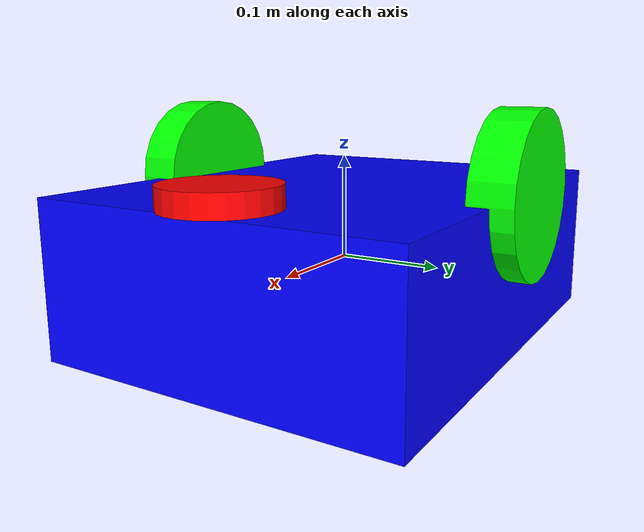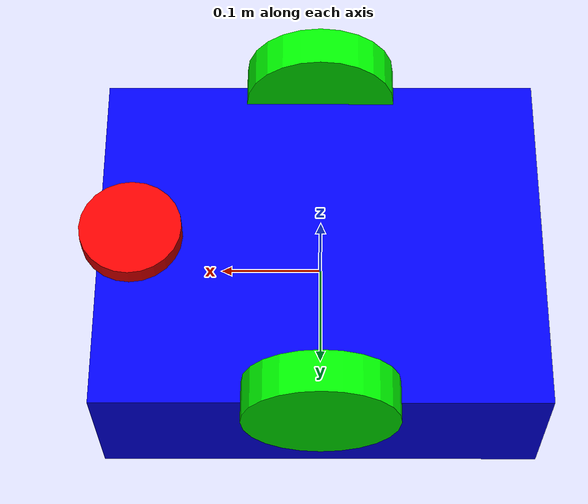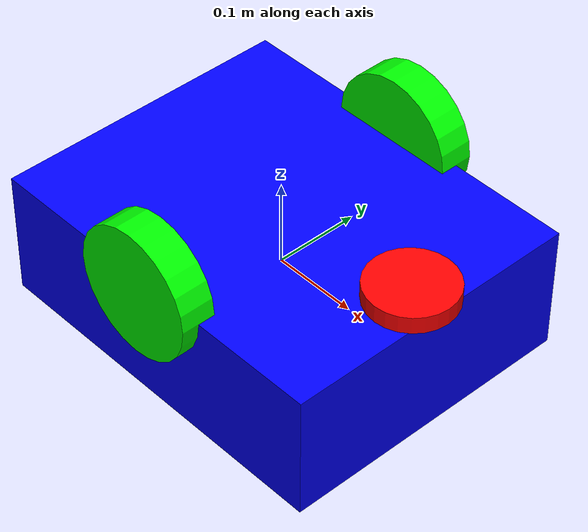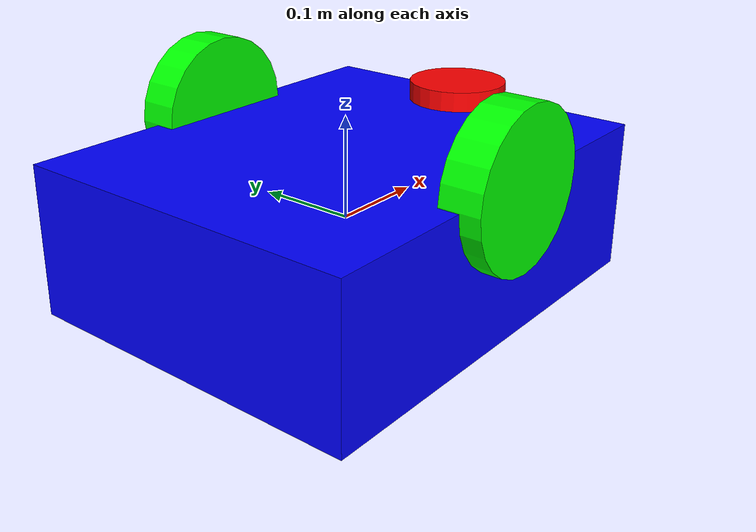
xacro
<?xml version="1.0"?>
<robot name="amr_robot" xmlns:xacro="http://www.ros.org/wiki/xacro">

  <!-- Material Definitions -->
  <material name="blue">
    <color rgba="0 0 1 1"/>
  </material>
  <material name="green">
    <color rgba="0 1 0 1"/>
  </material>
  <material name="red">
    <color rgba="1 0 0 1"/>
  </material>

  <!-- Base Link -->
  <link name="base_link">
    <visual>
      <geometry>
        <box size="0.435 0.35 0.148"/>
      </geometry>
      <material name="blue"/>
    </visual>
    <collision>
      <geometry>
        <box size="0.435 0.35 0.148"/>
      </geometry>
    </collision>
  </link>

  <!-- Wheels -->
  <!-- Left Wheel -->
  <link name="left_wheel_link">
    <visual>
      <geometry>
        <cylinder radius="0.075" length="0.04"/>
      </geometry>
      <!-- Rotate cylinder to stand upright along Y-axis -->
      <origin xyz="0 0 0" rpy="1.5708 0 0"/>
      <material name="green"/>
    </visual>
    <collision>
      <geometry>
        <cylinder radius="0.075" length="0.04"/>
      </geometry>
      <origin xyz="0 0 0" rpy="1.5708 0 0"/>
    </collision>
  </link>

  <joint name="left_wheel_joint" type="fixed">
    <parent link="base_link"/>
    <child link="left_wheel_link"/>
    <!-- centered in X, left side in Y, wheel radius in Z -->
    <origin xyz="0 0.175 0.075" rpy="0 0 0"/>
  </joint>

  <!-- Right Wheel -->
  <link name="right_wheel_link">
    <visual>
      <geometry>
        <cylinder radius="0.075" length="0.04"/>
      </geometry>
      <origin xyz="0 0 0" rpy="1.5708 0 0"/>
      <material name="green"/>
    </visual>
    <collision>
      <geometry>
        <cylinder radius="0.075" length="0.04"/>
      </geometry>
      <origin xyz="0 0 0" rpy="1.5708 0 0"/>
    </collision>
  </link>

  <joint name="right_wheel_joint" type="fixed">
    <parent link="base_link"/>
    <child link="right_wheel_link"/>
    <origin xyz="0 -0.175 0.075" rpy="0 0 0"/>
  </joint>

  <!-- Laser -->
  <link name="laser">
    <visual>
      <geometry>
        <cylinder radius="0.05" length="0.02"/>
      </geometry>
      <origin xyz="0 0 0" rpy="0 0 0"/>
      <material name="red"/>
    </visual>
    <collision>
      <geometry>
        <cylinder radius="0.05" length="0.02"/>
      </geometry>
      <origin xyz="0 0 0" rpy="0 0 0"/>
    </collision>
  </link>

  <joint name="laser_joint" type="fixed">
    <parent link="base_link"/>
    <child link="laser"/>
    <origin xyz="0.185 0 0.085" rpy="0 0 3.1416"/>
  </joint>

</robot>
